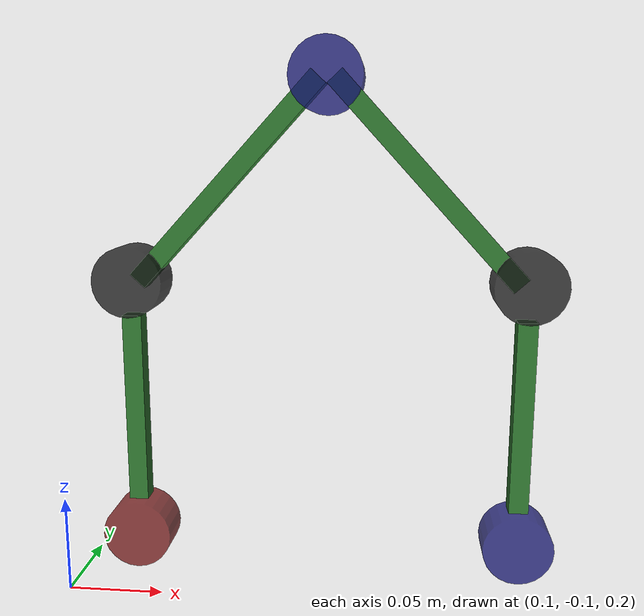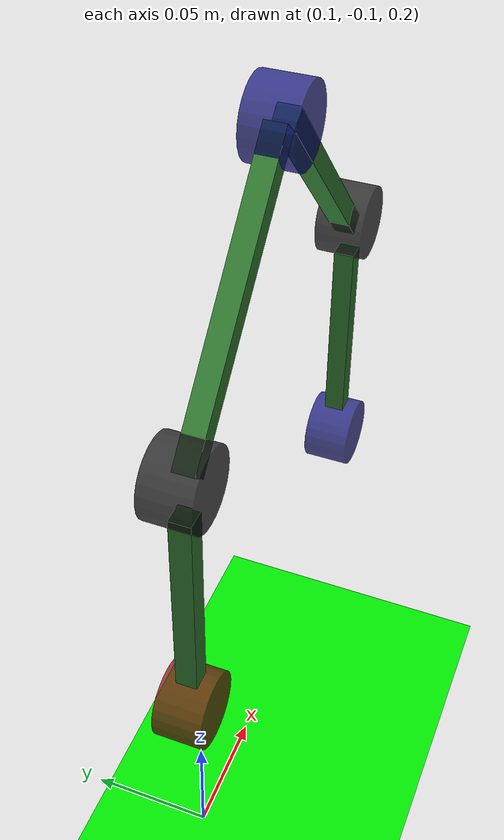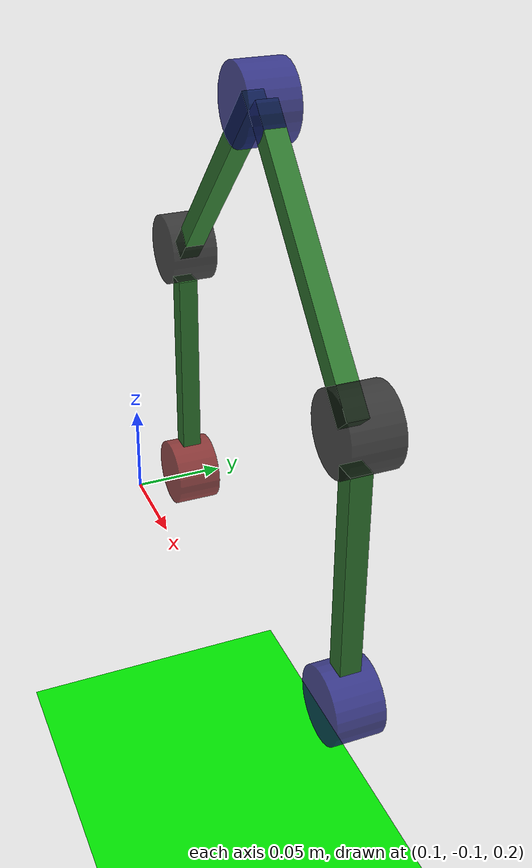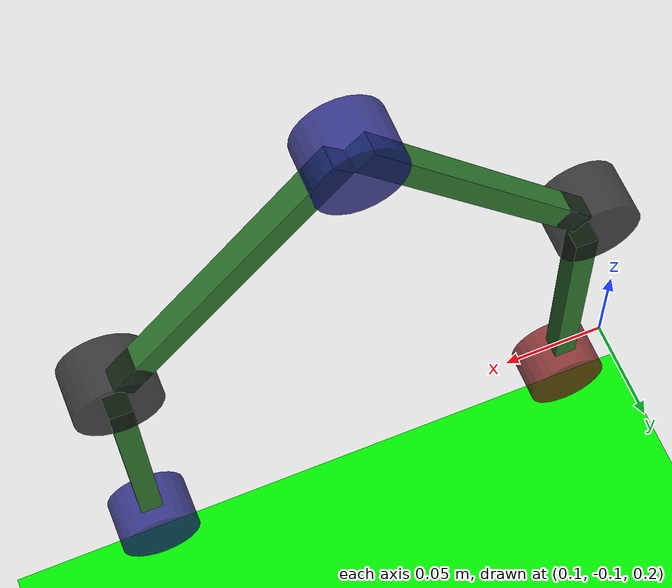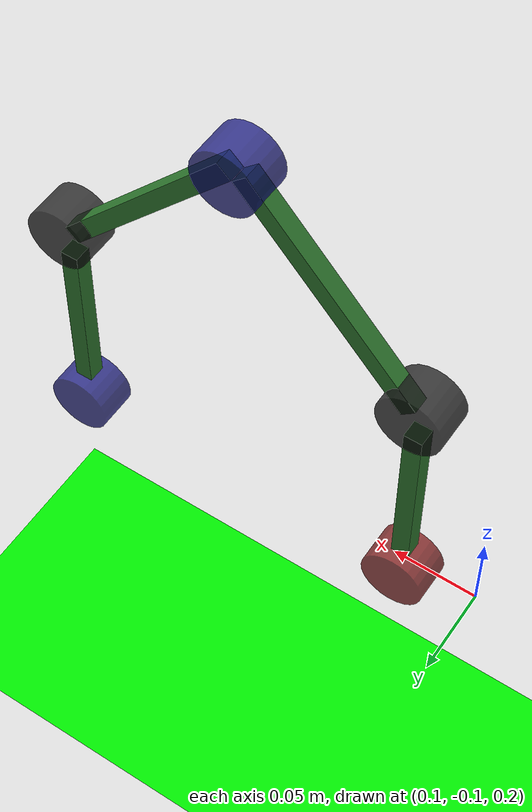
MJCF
<mujoco model="task2">
    <visual>
        <headlight ambient="0.5 0.5 0.5" />
    </visual>

    <option gravity="0 0 -9.81" />

    <actuator>
        <motor gear="100" joint="hinge_2_l" name="yaw_motor_left" ctrlrange="-.02 .02" ctrllimited="true"/>
        <motor gear="100" joint="hinge_2_r" name="yaw_motor_right" ctrlrange="-.02 .02" ctrllimited="true"/>
    </actuator>

    <worldbody>
        <light name="top" pos="0 0 1"/>
        <geom type="plane" pos="-0.5 -0.5 0" size="1 1 0.1"  rgba="0 .9 0 1"/>
        <body name="motor2_left" euler="0 0 0">
            <geom type="cylinder" fromto="0.135 -.0915 0.228 0.135 -.0685 0.228" size=".018" mass="0.065" rgba=".5 .1 .1 .8"/>
            <joint name="hinge_2_l" pos="0.135 -.08 0.228" axis="0 1 0" />
            <body name="link_2_left" euler="0 0 0">
                <geom name="link2_l" type="box" pos="0.135 -.08 0.296" size=".005 .005 .05" mass="0.02" rgba="0.2 0.5 0.2 1"/>
                <body name="motor1_left" euler="0 0 0">
                    <geom type="cylinder" fromto="0.135 -.0915 0.364 0.135 -.0685 0.364" size=".018" mass="0.065" rgba=".1 .1 .1 .8"/>
                    <joint name="hinge_1_l" pos="0.135 -.08 0.364" axis="0 1 0" />
                    <body name="link_1_left" euler="0 0 0">
                        <geom name="link1_l" type="box" pos="0.185 -.08 0.414" size=".005 .005 .068" mass="0.02" axisangle="0 1 0 42.67" rgba="0.2 0.5 0.2 1"/>
                        <body name="motor_cent_left" euler="0 0 0">
                             <geom type="cylinder" fromto="0.235 -.0915 0.464 0.235 -.0685 0.464" size=".018" mass="0.065" rgba=".1 .1 .5 .8"/>
                             <joint name="hinge_3_l" pos="0.235 -.08 0.464" axis="0 1 0" />
                         </body>
                    </body>
                </body>
            </body>
        </body>
        <body name="motor2_right" euler="0 0 0">
            <geom type="cylinder" fromto="0.335 -.0915 0.228 0.335 -.0685 0.228" size=".018" mass="0.065" rgba=".1 .1 .5 .8"/>
            <joint name="hinge_2_r" pos="0.335 -.08 0.228" axis="0 1 0" />
            <body name="link_2_right" euler="0 0 0">
                <geom name="link2_r" type="box" pos="0.335 -.08 0.296" size=".005 .005 .05" mass="0.02" rgba="0.2 0.5 0.2 1"/>
                <body name="motor1_right" euler="0 0 0">
                    <geom type="cylinder" fromto="0.335 -.0915 0.364 0.335 -.0685 0.364" size=".018" mass="0.065" rgba=".1 .1 .1 .8"/>
                    <joint name="hinge_1_r" pos="0.335 -.08 0.364" axis="0 1 0" />
                     <body name="link_1_right" euler="0 0 0">
                         <geom name="link1_r" type="box" pos="0.285 -.08 0.414" size=".005 .005 .068" mass="0.02" axisangle="0 1 0 -42.67" rgba="0.2 0.5 0.2 1"/>
                         <body name="motor_cent_right" euler="0 0 0">
                             <geom type="cylinder" fromto="0.235 -.0915 0.464 0.235 -.0685 0.464" size=".018" mass="0.065" rgba=".1 .1 .5 .8"/>
                             <joint name="hinge_3_r" pos="0.235 -.08 0.464" axis="0 1 0" />
                         </body>
                    </body>
                </body>
            </body>
        </body>
    </worldbody>
    <contact>
        <exclude body1="motor_cent_left" body2="motor_cent_right"/>
    </contact>

    <equality>
        <connect name="kinematic_link" active="true" body1="motor_cent_left" body2="motor_cent_right" anchor="0.235 -0.08 0.464" />
    </equality>
</mujoco>
